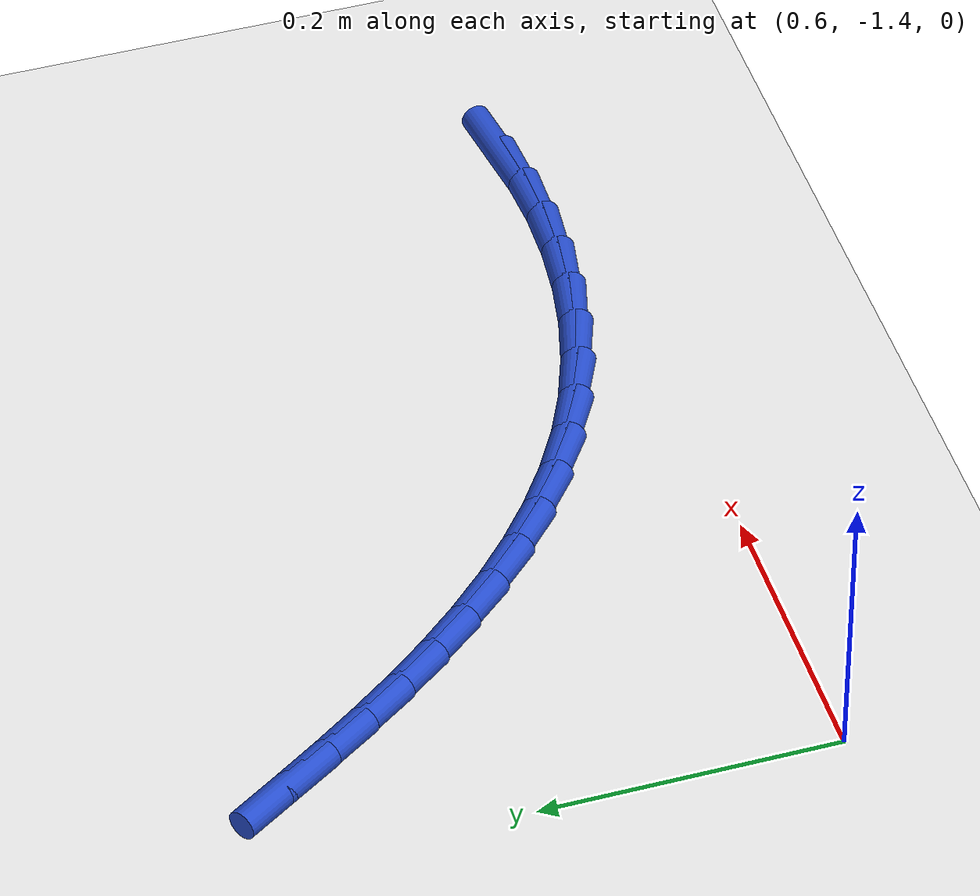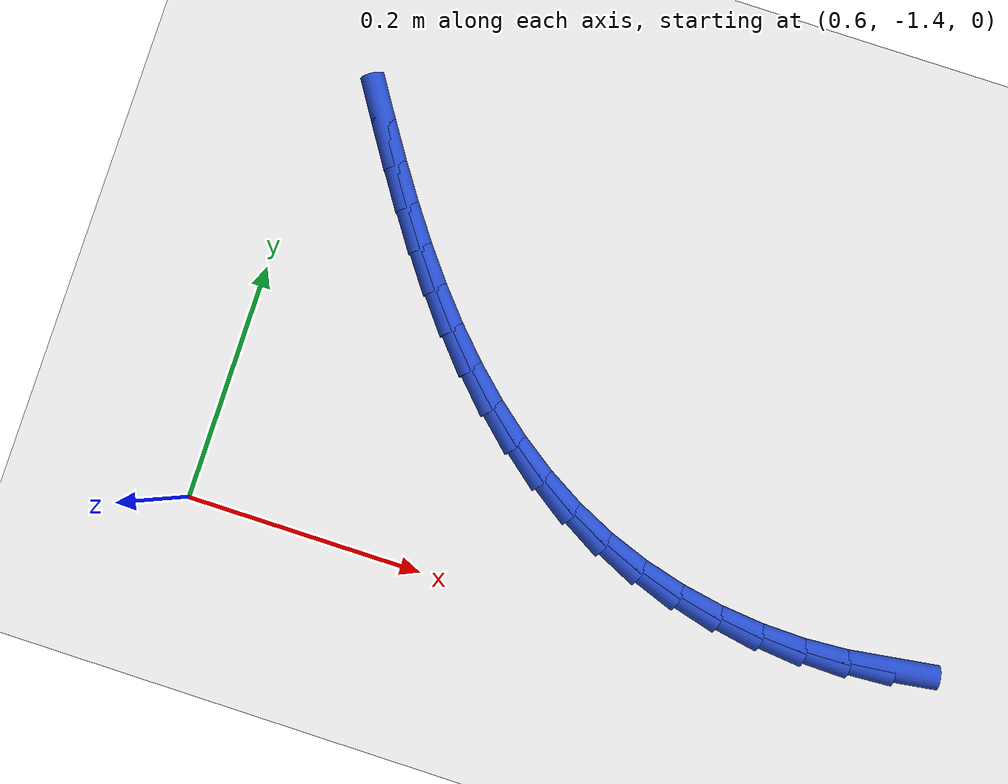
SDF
<sdf version="1.6">
 <world name="default">
  <model name="ground_plane">
   <static>1</static>
   <link name="link">
    <collision name="collision">
     <geometry><plane><normal>0 0 1</normal><size>100 100</size></plane></geometry>
     <surface><friction><ode><mu>100</mu><mu2>50</mu2></ode></friction></surface>
    </collision>
    <visual name="visual">
     <cast_shadows>0</cast_shadows>
     <geometry><plane><normal>0 0 1</normal><size>100 100</size></plane></geometry>
     <material>
      <script><uri>file://media/materials/scripts/gazebo.material</uri><name>Gazebo/WhiteGlow</name></script>
     </material>
    </visual>
   </link>
  </model>
  <model name="line">
   <link name="link_166">
    <pose>1.186446912369519 -1.355868656313032 0.01 0 1.57 0.14035250048995582</pose>
    <collision name="collision">
     <geometry><cylinder><radius>0.01</radius><length>0.08</length></cylinder></geometry>
    </collision>
    <visual name="visual">
     <material>
      <script><name>Gazebo/Blue</name><uri>file://media/materials/scripts/gazebo.material</uri></script>
     </material>
     <geometry><cylinder><radius>0.01</radius><length>0.08</length></cylinder></geometry>
    </visual>
   </link>
   <link name="link_167">
    <pose>1.1507780197333384 -1.3609080078884628 0.01 0 1.57 0.05794247845728874</pose>
    <collision name="collision">
     <geometry><cylinder><radius>0.01</radius><length>0.08</length></cylinder></geometry>
    </collision>
    <visual name="visual">
     <material>
      <script><name>Gazebo/Blue</name><uri>file://media/materials/scripts/gazebo.material</uri></script>
     </material>
     <geometry><cylinder><radius>0.01</radius><length>0.08</length></cylinder></geometry>
    </visual>
   </link>
   <link name="link_168">
    <pose>1.114466534565335 -1.3630143430846788 0.01 0 1.57 -0.02259598542686565</pose>
    <collision name="collision">
     <geometry><cylinder><radius>0.01</radius><length>0.08</length></cylinder></geometry>
    </collision>
    <visual name="visual">
     <material>
      <script><name>Gazebo/Blue</name><uri>file://media/materials/scripts/gazebo.material</uri></script>
     </material>
     <geometry><cylinder><radius>0.01</radius><length>0.08</length></cylinder></geometry>
    </visual>
   </link>
   <link name="link_169">
    <pose>1.077867027326512 -1.3621872003739106 0.01 0 1.57 -0.10258896348315562</pose>
    <collision name="collision">
     <geometry><cylinder><radius>0.01</radius><length>0.08</length></cylinder></geometry>
    </collision>
    <visual name="visual">
     <material>
      <script><name>Gazebo/Blue</name><uri>file://media/materials/scripts/gazebo.material</uri></script>
     </material>
     <geometry><cylinder><radius>0.01</radius><length>0.08</length></cylinder></geometry>
    </visual>
   </link>
   <link name="link_170">
    <pose>1.0413340684778747 -1.3584261182283897 0.01 0 1.57 -0.18332781731879155</pose>
    <collision name="collision">
     <geometry><cylinder><radius>0.01</radius><length>0.08</length></cylinder></geometry>
    </collision>
    <visual name="visual">
     <material>
      <script><name>Gazebo/Blue</name><uri>file://media/materials/scripts/gazebo.material</uri></script>
     </material>
     <geometry><cylinder><radius>0.01</radius><length>0.08</length></cylinder></geometry>
    </visual>
   </link>
   <link name="link_171">
    <pose>1.0052222284804264 -1.351730635120346 0.01 0 1.57 -0.2660732835993134</pose>
    <collision name="collision">
     <geometry><cylinder><radius>0.01</radius><length>0.08</length></cylinder></geometry>
    </collision>
    <visual name="visual">
     <material>
      <script><name>Gazebo/Blue</name><uri>file://media/materials/scripts/gazebo.material</uri></script>
     </material>
     <geometry><cylinder><radius>0.01</radius><length>0.08</length></cylinder></geometry>
    </visual>
   </link>
   <link name="link_172">
    <pose>0.9698860777951712 -1.3421002895220113 0.01 0 1.57 -0.35205050417381456</pose>
    <collision name="collision">
     <geometry><cylinder><radius>0.01</radius><length>0.08</length></cylinder></geometry>
    </collision>
    <visual name="visual">
     <material>
      <script><name>Gazebo/Blue</name><uri>file://media/materials/scripts/gazebo.material</uri></script>
     </material>
     <geometry><cylinder><radius>0.01</radius><length>0.08</length></cylinder></geometry>
    </visual>
   </link>
   <link name="link_173">
    <pose>0.9356801868831124 -1.329534619905616 0.01 0 1.57 -0.441930221228965</pose>
    <collision name="collision">
     <geometry><cylinder><radius>0.01</radius><length>0.08</length></cylinder></geometry>
    </collision>
    <visual name="visual">
     <material>
      <script><name>Gazebo/Blue</name><uri>file://media/materials/scripts/gazebo.material</uri></script>
     </material>
     <geometry><cylinder><radius>0.01</radius><length>0.08</length></cylinder></geometry>
    </visual>
   </link>
   <link name="link_174">
    <pose>0.9029435408016893 -1.3140455802829232 0.01 0 1.57 -0.5297234878684264</pose>
    <collision name="collision">
     <geometry><cylinder><radius>0.01</radius><length>0.08</length></cylinder></geometry>
    </collision>
    <visual name="visual">
     <material>
      <script><name>Gazebo/Blue</name><uri>file://media/materials/scripts/gazebo.material</uri></script>
     </material>
     <geometry><cylinder><radius>0.01</radius><length>0.08</length></cylinder></geometry>
    </visual>
   </link>
   <link name="link_175">
    <pose>0.8718049776175847 -1.2958125305503003 0.01 0 1.57 -0.6103616889826846</pose>
    <collision name="collision">
     <geometry><cylinder><radius>0.01</radius><length>0.08</length></cylinder></geometry>
    </collision>
    <visual name="visual">
     <material>
      <script><name>Gazebo/Blue</name><uri>file://media/materials/scripts/gazebo.material</uri></script>
     </material>
     <geometry><cylinder><radius>0.01</radius><length>0.08</length></cylinder></geometry>
    </visual>
   </link>
   <link name="link_176">
    <pose>0.8422426004771177 -1.2751349080441747 0.01 0 1.57 -0.6836245803231629</pose>
    <collision name="collision">
     <geometry><cylinder><radius>0.01</radius><length>0.08</length></cylinder></geometry>
    </collision>
    <visual name="visual">
     <material>
      <script><name>Gazebo/Blue</name><uri>file://media/materials/scripts/gazebo.material</uri></script>
     </material>
     <geometry><cylinder><radius>0.01</radius><length>0.08</length></cylinder></geometry>
    </visual>
   </link>
   <link name="link_177">
    <pose>0.814231222341316 -1.2523147711062825 0.01 0 1.57 -0.7497317661421652</pose>
    <collision name="collision">
     <geometry><cylinder><radius>0.01</radius><length>0.08</length></cylinder></geometry>
    </collision>
    <visual name="visual">
     <material>
      <script><name>Gazebo/Blue</name><uri>file://media/materials/scripts/gazebo.material</uri></script>
     </material>
     <geometry><cylinder><radius>0.01</radius><length>0.08</length></cylinder></geometry>
    </visual>
   </link>
   <link name="link_178">
    <pose>0.7877456561712072 -1.2276541780783605 0.01 0 1.57 -0.8091130653982155</pose>
    <collision name="collision">
     <geometry><cylinder><radius>0.01</radius><length>0.08</length></cylinder></geometry>
    </collision>
    <visual name="visual">
     <material>
      <script><name>Gazebo/Blue</name><uri>file://media/materials/scripts/gazebo.material</uri></script>
     </material>
     <geometry><cylinder><radius>0.01</radius><length>0.08</length></cylinder></geometry>
    </visual>
   </link>
   <link name="link_179">
    <pose>0.7627607149278214 -1.2014551873021486 0.01 0 1.57 -0.8621367054559483</pose>
    <collision name="collision">
     <geometry><cylinder><radius>0.01</radius><length>0.08</length></cylinder></geometry>
    </collision>
    <visual name="visual">
     <material>
      <script><name>Gazebo/Blue</name><uri>file://media/materials/scripts/gazebo.material</uri></script>
     </material>
     <geometry><cylinder><radius>0.01</radius><length>0.08</length></cylinder></geometry>
    </visual>
   </link>
   <link name="link_180">
    <pose>0.7392368289630054 -1.174012505903317 0.01 0 1.57 -0.9076400108638616</pose>
    <collision name="collision">
     <geometry><cylinder><radius>0.01</radius><length>0.08</length></cylinder></geometry>
    </collision>
    <visual name="visual">
     <material>
      <script><name>Gazebo/Blue</name><uri>file://media/materials/scripts/gazebo.material</uri></script>
     </material>
     <geometry><cylinder><radius>0.01</radius><length>0.08</length></cylinder></geometry>
    </visual>
   </link>
   <link name="link_181">
    <pose>0.71700715978155 -1.1455557915591867 0.01 0 1.57 -0.9447361288084407</pose>
    <collision name="collision">
     <geometry><cylinder><radius>0.01</radius><length>0.08</length></cylinder></geometry>
    </collision>
    <visual name="visual">
     <material>
      <script><name>Gazebo/Blue</name><uri>file://media/materials/scripts/gazebo.material</uri></script>
     </material>
     <geometry><cylinder><radius>0.01</radius><length>0.08</length></cylinder></geometry>
    </visual>
   </link>
   <link name="link_182">
    <pose>0.6958384437299421 -1.1162807508270323 0.01 0 1.57 -0.9733682783188989</pose>
    <collision name="collision">
     <geometry><cylinder><radius>0.01</radius><length>0.08</length></cylinder></geometry>
    </collision>
    <visual name="visual">
     <material>
      <script><name>Gazebo/Blue</name><uri>file://media/materials/scripts/gazebo.material</uri></script>
     </material>
     <geometry><cylinder><radius>0.01</radius><length>0.08</length></cylinder></geometry>
    </visual>
   </link>
   <link name="link_183">
    <pose>0.6754968409007881 -1.0863827957301735 0.01 0 1.57 -0.9935689149305093</pose>
    <collision name="collision">
     <geometry><cylinder><radius>0.01</radius><length>0.08</length></cylinder></geometry>
    </collision>
    <visual name="visual">
     <material>
      <script><name>Gazebo/Blue</name><uri>file://media/materials/scripts/gazebo.material</uri></script>
     </material>
     <geometry><cylinder><radius>0.01</radius><length>0.08</length></cylinder></geometry>
    </visual>
   </link>
   <link name="link_184">
    <pose>0.655748511386693 -1.0560573382919285 0.01 0 1.57 -1.0053916186295455</pose>
    <collision name="collision">
     <geometry><cylinder><radius>0.01</radius><length>0.08</length></cylinder></geometry>
    </collision>
    <visual name="visual">
     <material>
      <script><name>Gazebo/Blue</name><uri>file://media/materials/scripts/gazebo.material</uri></script>
     </material>
     <geometry><cylinder><radius>0.01</radius><length>0.08</length></cylinder></geometry>
    </visual>
   </link>
  </model>
 </world>
</sdf>
